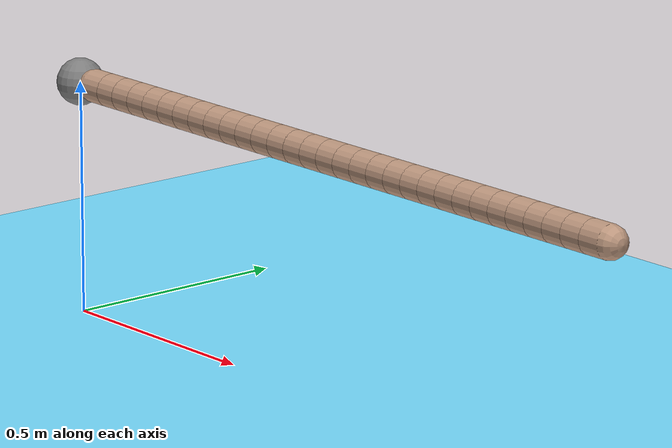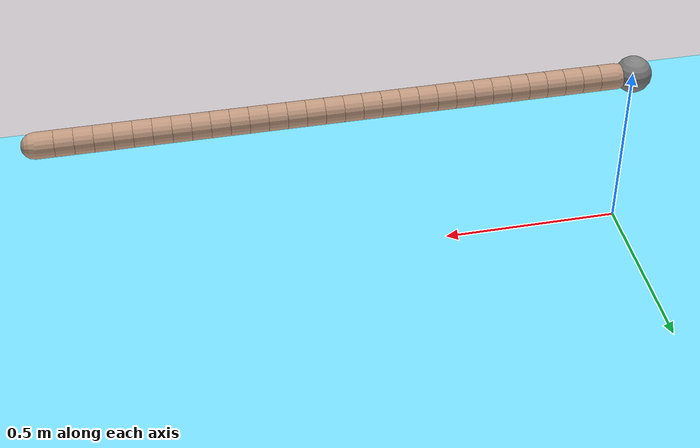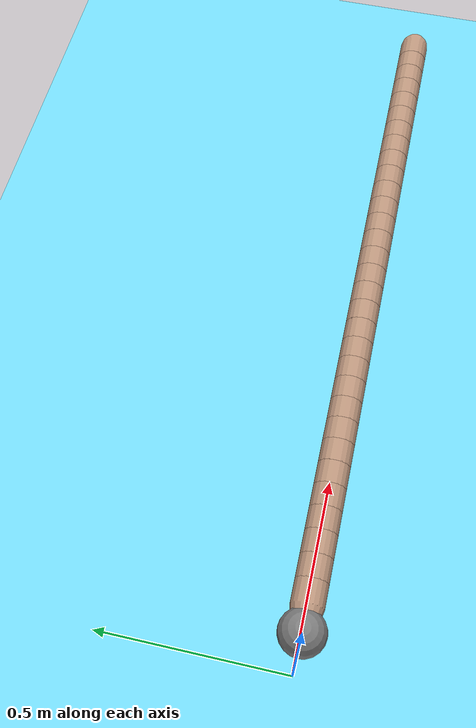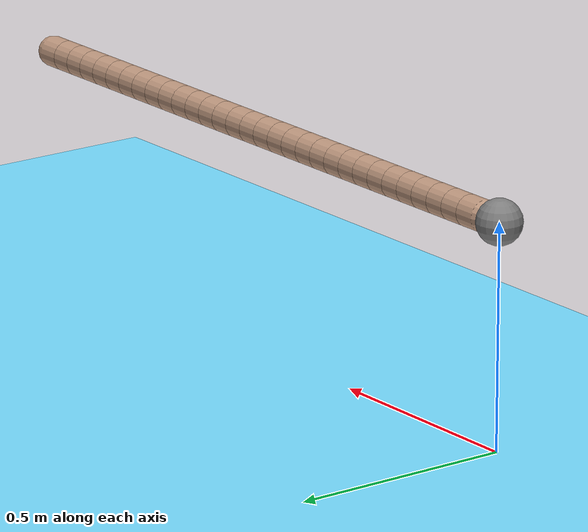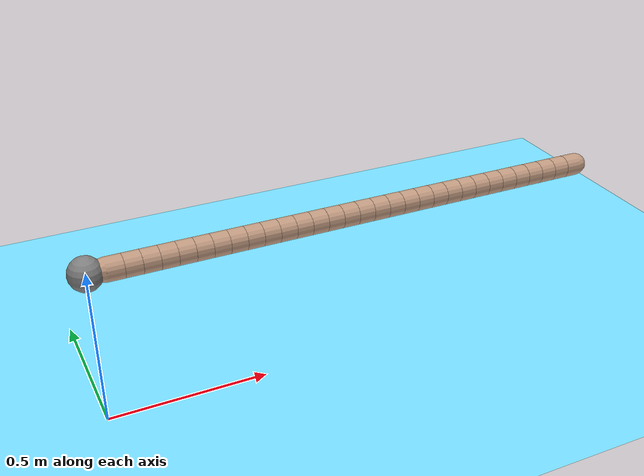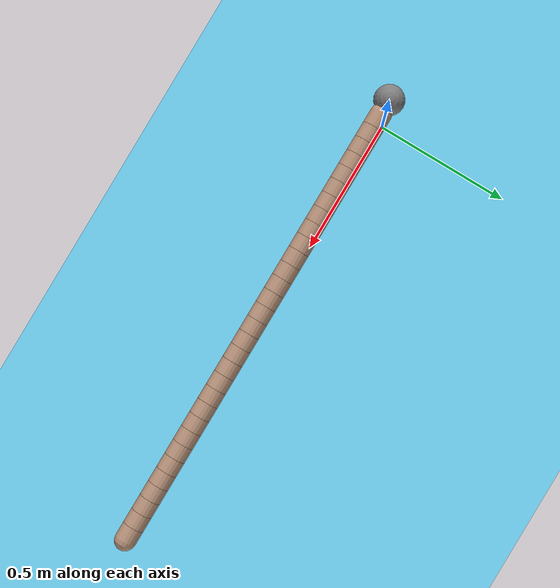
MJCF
<mujoco>
    <!-- === Configuration parameter stuff, default values === -->
    <default>
        <default class="position">
            <position ctrllimited="true" forcelimited="false" />
        </default>
        <default class="geom0">
            <geom conaffinity="0" contype="1" friction="1 0.005 0.001" margin="0.001" rgba="0.75 0.6 0.5 1" solimp="0.95 0.95 0.01" solref="0.008 1" />
        </default>
        <default class="link">
            <joint armature="0.1" damping="5" limited="true" stiffness="0" />
        </default>
    </default>
    <!-- === Physical robot definitions === -->
    <worldbody>
        <light diffuse=".5 .5 .5" pos="0 0 3" dir="0 0 -1" />
        <geom type="plane" size="100 100 0.1" rgba="0.46 0.86 1 1" />
    <body name="base" pos="0 0 0.5">
            <joint type="free" damping="0.9" stiffness="1.2" />
            <geom size="0.05" type="sphere" />
            <body name="base_link" pos="0.05 0 0">
                <geom class="geom0" fromto="0 0 0 0.05 0 0" size="0.035" type="capsule" />
                <joint axis="0 0 1" class="link" name="base_joint" pos="0 0 0" range="-20.5 20.5" type="hinge" />
                <body name="link_0" pos="0.05 0 0">
                    <geom class="geom0" fromto="0 0 0 0.05 0 0" size="0.035" type="capsule" />
                    <joint axis="0 0 1" class="link" name="joint_0" pos="0 0 0" range="-20.5 20.5" type="hinge" />
                    <body name="link_1" pos="0.05 0 0">
                        <geom class="geom0" fromto="0 0 0 0.05 0 0" size="0.035" type="capsule" />
                        <joint axis="0 0 1" class="link" name="joint_1" pos="0 0 0" range="-20.5 20.5" type="hinge" />
                        <body name="link_2" pos="0.05 0 0">
                            <geom class="geom0" fromto="0 0 0 0.05 0 0" size="0.035" type="capsule" />
                            <joint axis="0 0 1" class="link" name="joint_2" pos="0 0 0" range="-20.5 20.5" type="hinge" />
                            <body name="link_3" pos="0.05 0 0">
                                <geom class="geom0" fromto="0 0 0 0.05 0 0" size="0.035" type="capsule" />
                                <joint axis="0 0 1" class="link" name="joint_3" pos="0 0 0" range="-20.5 20.5" type="hinge" />
                                <body name="link_4" pos="0.05 0 0">
                                    <geom class="geom0" fromto="0 0 0 0.05 0 0" size="0.035" type="capsule" />
                                    <joint axis="0 0 1" class="link" name="joint_4" pos="0 0 0" range="-20.5 20.5" type="hinge" />
                                    <body name="link_5" pos="0.05 0 0">
                                        <geom class="geom0" fromto="0 0 0 0.05 0 0" size="0.035" type="capsule" />
                                        <joint axis="0 0 1" class="link" name="joint_5" pos="0 0 0" range="-20.5 20.5" type="hinge" />
                                        <body name="link_6" pos="0.05 0 0">
                                            <geom class="geom0" fromto="0 0 0 0.05 0 0" size="0.035" type="capsule" />
                                            <joint axis="0 0 1" class="link" name="joint_6" pos="0 0 0" range="-20.5 20.5" type="hinge" />
                                            <body name="link_7" pos="0.05 0 0">
                                                <geom class="geom0" fromto="0 0 0 0.05 0 0" size="0.035" type="capsule" />
                                                <joint axis="0 0 1" class="link" name="joint_7" pos="0 0 0" range="-20.5 20.5" type="hinge" />
                                                <body name="link_8" pos="0.05 0 0">
                                                    <geom class="geom0" fromto="0 0 0 0.05 0 0" size="0.035" type="capsule" />
                                                    <joint axis="0 0 1" class="link" name="joint_8" pos="0 0 0" range="-20.5 20.5" type="hinge" />
                                                    <body name="link_9" pos="0.05 0 0">
                                                        <geom class="geom0" fromto="0 0 0 0.05 0 0" size="0.035" type="capsule" />
                                                        <joint axis="0 0 1" class="link" name="joint_9" pos="0 0 0" range="-20.5 20.5" type="hinge" />
                                                        <body name="link_10" pos="0.05 0 0">
                                                            <geom class="geom0" fromto="0 0 0 0.05 0 0" size="0.035" type="capsule" />
                                                            <joint axis="0 0 1" class="link" name="joint_10" pos="0 0 0" range="-20.5 20.5" type="hinge" />
                                                            <body name="link_11" pos="0.05 0 0">
                                                                <geom class="geom0" fromto="0 0 0 0.05 0 0" size="0.035" type="capsule" />
                                                                <joint axis="0 0 1" class="link" name="joint_11" pos="0 0 0" range="-20.5 20.5" type="hinge" />
                                                                <body name="link_12" pos="0.05 0 0">
                                                                    <geom class="geom0" fromto="0 0 0 0.05 0 0" size="0.035" type="capsule" />
                                                                    <joint axis="0 0 1" class="link" name="joint_12" pos="0 0 0" range="-20.5 20.5" type="hinge" />
                                                                    <body name="link_13" pos="0.05 0 0">
                                                                        <geom class="geom0" fromto="0 0 0 0.05 0 0" size="0.035" type="capsule" />
                                                                        <joint axis="0 0 1" class="link" name="joint_13" pos="0 0 0" range="-20.5 20.5" type="hinge" />
                                                                        <body name="link_14" pos="0.05 0 0">
                                                                            <geom class="geom0" fromto="0 0 0 0.05 0 0" size="0.035" type="capsule" />
                                                                            <joint axis="0 0 1" class="link" name="joint_14" pos="0 0 0" range="-20.5 20.5" type="hinge" />
                                                                            <body name="link_15" pos="0.05 0 0">
                                                                                <geom class="geom0" fromto="0 0 0 0.05 0 0" size="0.035" type="capsule" />
                                                                                <joint axis="0 0 1" class="link" name="joint_15" pos="0 0 0" range="-20.5 20.5" type="hinge" />
                                                                                <body name="link_16" pos="0.05 0 0">
                                                                                    <geom class="geom0" fromto="0 0 0 0.05 0 0" size="0.035" type="capsule" />
                                                                                    <joint axis="0 0 1" class="link" name="joint_16" pos="0 0 0" range="-20.5 20.5" type="hinge" />
                                                                                    <body name="link_17" pos="0.05 0 0">
                                                                                        <geom class="geom0" fromto="0 0 0 0.05 0 0" size="0.035" type="capsule" />
                                                                                        <joint axis="0 0 1" class="link" name="joint_17" pos="0 0 0" range="-20.5 20.5" type="hinge" />
                                                                                        <body name="link_18" pos="0.05 0 0">
                                                                                            <geom class="geom0" fromto="0 0 0 0.05 0 0" size="0.035" type="capsule" />
                                                                                            <joint axis="0 0 1" class="link" name="joint_18" pos="0 0 0" range="-20.5 20.5" type="hinge" />
                                                                                            <body name="link_19" pos="0.05 0 0">
                                                                                                <geom class="geom0" fromto="0 0 0 0.05 0 0" size="0.035" type="capsule" />
                                                                                                <joint axis="0 0 1" class="link" name="joint_19" pos="0 0 0" range="-20.5 20.5" type="hinge" />
                                                                                                <body name="link_20" pos="0.05 0 0">
                                                                                                    <geom class="geom0" fromto="0 0 0 0.05 0 0" size="0.035" type="capsule" />
                                                                                                    <joint axis="0 0 1" class="link" name="joint_20" pos="0 0 0" range="-20.5 20.5" type="hinge" />
                                                                                                    <body name="link_21" pos="0.05 0 0">
                                                                                                        <geom class="geom0" fromto="0 0 0 0.05 0 0" size="0.035" type="capsule" />
                                                                                                        <joint axis="0 0 1" class="link" name="joint_21" pos="0 0 0" range="-20.5 20.5" type="hinge" />
                                                                                                        <body name="link_22" pos="0.05 0 0">
                                                                                                            <geom class="geom0" fromto="0 0 0 0.05 0 0" size="0.035" type="capsule" />
                                                                                                            <joint axis="0 0 1" class="link" name="joint_22" pos="0 0 0" range="-20.5 20.5" type="hinge" />
                                                                                                            <body name="link_23" pos="0.05 0 0">
                                                                                                                <geom class="geom0" fromto="0 0 0 0.05 0 0" size="0.035" type="capsule" />
                                                                                                                <joint axis="0 0 1" class="link" name="joint_23" pos="0 0 0" range="-20.5 20.5" type="hinge" />
                                                                                                                <body name="link_24" pos="0.05 0 0">
                                                                                                                    <geom class="geom0" fromto="0 0 0 0.05 0 0" size="0.035" type="capsule" />
                                                                                                                    <joint axis="0 0 1" class="link" name="joint_24" pos="0 0 0" range="-20.5 20.5" type="hinge" />
                                                                                                                    <body name="link_25" pos="0.05 0 0">
                                                                                                                        <geom class="geom0" fromto="0 0 0 0.05 0 0" size="0.035" type="capsule" />
                                                                                                                        <joint axis="0 0 1" class="link" name="joint_25" pos="0 0 0" range="-20.5 20.5" type="hinge" />
                                                                                                                        <body name="link_26" pos="0.05 0 0">
                                                                                                                            <geom class="geom0" fromto="0 0 0 0.05 0 0" size="0.035" type="capsule" />
                                                                                                                            <joint axis="0 0 1" class="link" name="joint_26" pos="0 0 0" range="-20.5 20.5" type="hinge" />
                                                                                                                            <body name="link_27" pos="0.05 0 0">
                                                                                                                                <geom class="geom0" fromto="0 0 0 0.05 0 0" size="0.035" type="capsule" />
                                                                                                                                <joint axis="0 0 1" class="link" name="joint_27" pos="0 0 0" range="-20.5 20.5" type="hinge" />
                                                                                                                                <body name="link_28" pos="0.05 0 0">
                                                                                                                                    <geom class="geom0" fromto="0 0 0 0.05 0 0" size="0.035" type="capsule" />
                                                                                                                                    <joint axis="0 0 1" class="link" name="joint_28" pos="0 0 0" range="-20.5 20.5" type="hinge" />
                                                                                                                                    <body name="link_29" pos="0.05 0 0">
                                                                                                                                        <geom class="geom0" fromto="0 0 0 0.05 0 0" size="0.035" type="capsule" />
                                                                                                                                        <joint axis="0 0 1" class="link" name="joint_29" pos="0 0 0" range="-20.5 20.5" type="hinge" />
                                                                                                                                    </body>
                                                                                                                                </body>
                                                                                                                            </body>
                                                                                                                        </body>
                                                                                                                    </body>
                                                                                                                </body>
                                                                                                            </body>
                                                                                                        </body>
                                                                                                    </body>
                                                                                                </body>
                                                                                            </body>
                                                                                        </body>
                                                                                    </body>
                                                                                </body>
                                                                            </body>
                                                                        </body>
                                                                    </body>
                                                                </body>
                                                            </body>
                                                        </body>
                                                    </body>
                                                </body>
                                            </body>
                                        </body>
                                    </body>
                                </body>
                            </body>
                        </body>
                    </body>
                </body>
            </body>
        </body>
    </worldbody>
    <actuator>
        <position class="position" ctrlrange="-1 1" joint="base_joint" kp="100" name="act_base_joint" />
        <position class="position" ctrlrange="-1 1" joint="joint_0" kp="100" name="act_joint_0" />
        <position class="position" ctrlrange="-1 1" joint="joint_1" kp="100" name="act_joint_1" />
        <position class="position" ctrlrange="-1 1" joint="joint_2" kp="100" name="act_joint_2" />
        <position class="position" ctrlrange="-1 1" joint="joint_3" kp="100" name="act_joint_3" />
        <position class="position" ctrlrange="-1 1" joint="joint_4" kp="100" name="act_joint_4" />
        <position class="position" ctrlrange="-1 1" joint="joint_5" kp="100" name="act_joint_5" />
        <position class="position" ctrlrange="-1 1" joint="joint_6" kp="100" name="act_joint_6" />
        <position class="position" ctrlrange="-1 1" joint="joint_7" kp="100" name="act_joint_7" />
        <position class="position" ctrlrange="-1 1" joint="joint_8" kp="100" name="act_joint_8" />
        <position class="position" ctrlrange="-1 1" joint="joint_9" kp="100" name="act_joint_9" />
        <position class="position" ctrlrange="-1 1" joint="joint_10" kp="100" name="act_joint_10" />
        <position class="position" ctrlrange="-1 1" joint="joint_11" kp="100" name="act_joint_11" />
        <position class="position" ctrlrange="-1 1" joint="joint_12" kp="100" name="act_joint_12" />
        <position class="position" ctrlrange="-1 1" joint="joint_13" kp="100" name="act_joint_13" />
        <position class="position" ctrlrange="-1 1" joint="joint_14" kp="100" name="act_joint_14" />
        <position class="position" ctrlrange="-1 1" joint="joint_15" kp="100" name="act_joint_15" />
        <position class="position" ctrlrange="-1 1" joint="joint_16" kp="100" name="act_joint_16" />
        <position class="position" ctrlrange="-1 1" joint="joint_17" kp="100" name="act_joint_17" />
        <position class="position" ctrlrange="-1 1" joint="joint_18" kp="100" name="act_joint_18" />
        <position class="position" ctrlrange="-1 1" joint="joint_19" kp="100" name="act_joint_19" />
        <position class="position" ctrlrange="-1 1" joint="joint_20" kp="100" name="act_joint_20" />
        <position class="position" ctrlrange="-1 1" joint="joint_21" kp="100" name="act_joint_21" />
        <position class="position" ctrlrange="-1 1" joint="joint_22" kp="100" name="act_joint_22" />
        <position class="position" ctrlrange="-1 1" joint="joint_23" kp="100" name="act_joint_23" />
        <position class="position" ctrlrange="-1 1" joint="joint_24" kp="100" name="act_joint_24" />
        <position class="position" ctrlrange="-1 1" joint="joint_25" kp="100" name="act_joint_25" />
        <position class="position" ctrlrange="-1 1" joint="joint_26" kp="100" name="act_joint_26" />
        <position class="position" ctrlrange="-1 1" joint="joint_27" kp="100" name="act_joint_27" />
        <position class="position" ctrlrange="-1 1" joint="joint_28" kp="100" name="act_joint_28" />
        <position class="position" ctrlrange="-1 1" joint="joint_29" kp="100" name="act_joint_29" />
    </actuator>
    <option gravity="0 0 -1.8" />
</mujoco>
